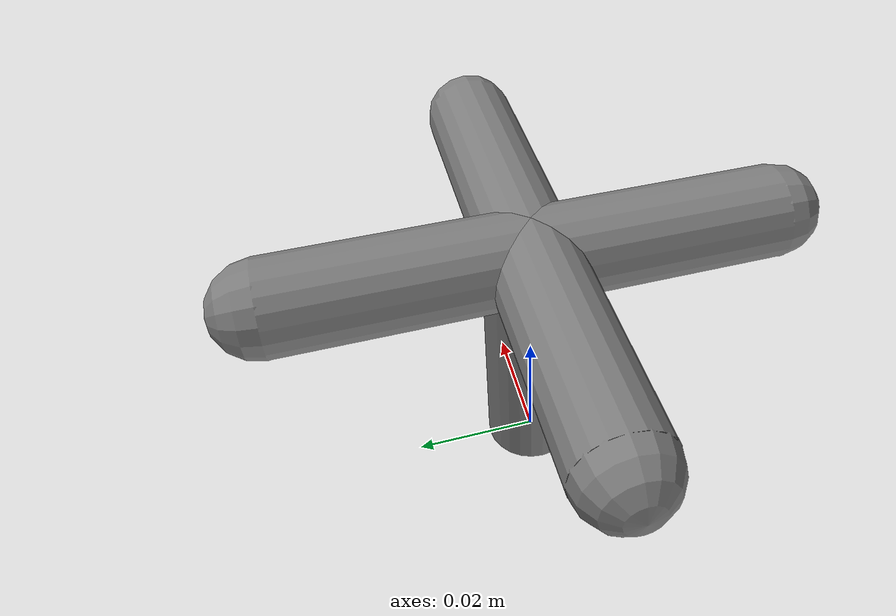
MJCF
<?xml version="1.0" ?>

<mujoco>
    <compiler angle="radian" coordinate="local"/>
    <default>
        <default class="visual">
            <geom contype="0" conaffinity="0"/>
        </default>
        <default class="collision">
            <geom contype="1" conaffinity="1"/>
        </default>
        <site rgba="1 0 0 .5"/>
    </default>

    <worldbody>
        <include file="valve_collision.xml"/>
    </worldbody>
</mujoco>

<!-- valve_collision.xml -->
<mujoco>
    <body name="valve" euler="0 0 0" pos="0 0 0">
        <joint name="valve_position" axis="0 0 1.0" limited="false" frictionloss=".1"/>

        <geom class="collision" type="cylinder" euler="0 0 0" pos="0 0 0.02" size="0.0075 0.02" mass=".05"/>
        <geom class="collision" type="capsule" euler="1.57079632679 0 0" pos="0 0 0.04" size="0.0075 0.04" mass=".10"/>
        <geom class="collision" type="capsule" euler="1.57079632679 1.57079632679 0" pos="0 0 0.04" size="0.0075 0.04"
              mass=".10"/>
        <site name="valve_center" pos="0 0 0.04" euler="0 0 0" size="0.005, 0.005, 0.005"/>
    </body>
</mujoco>
